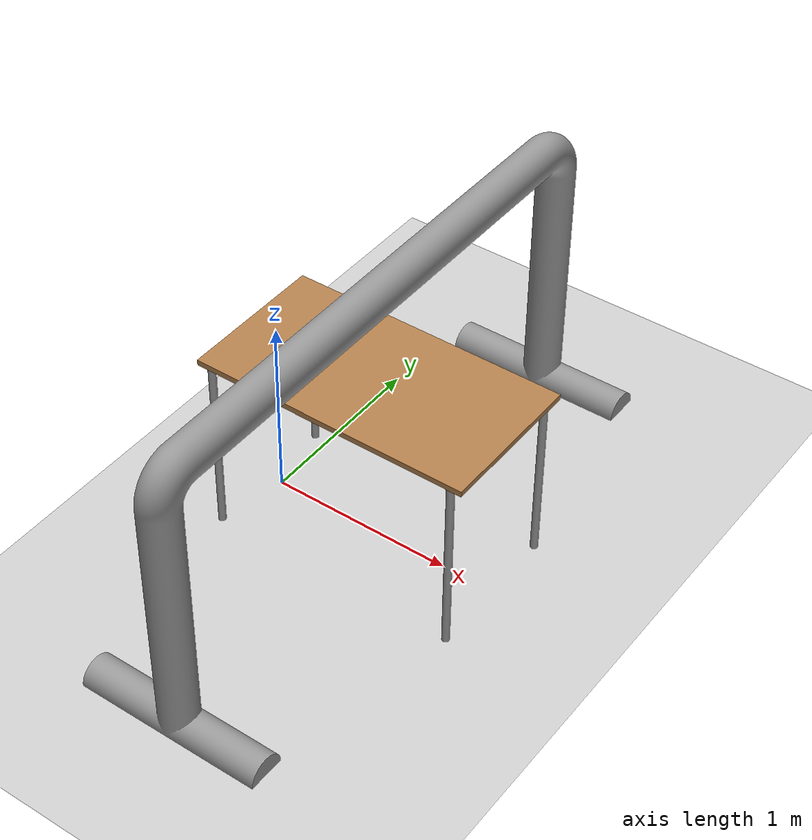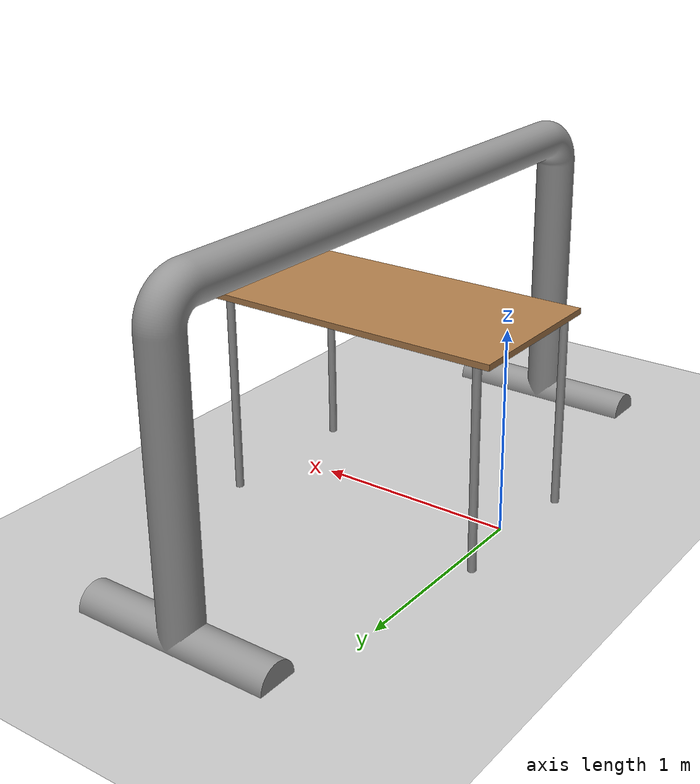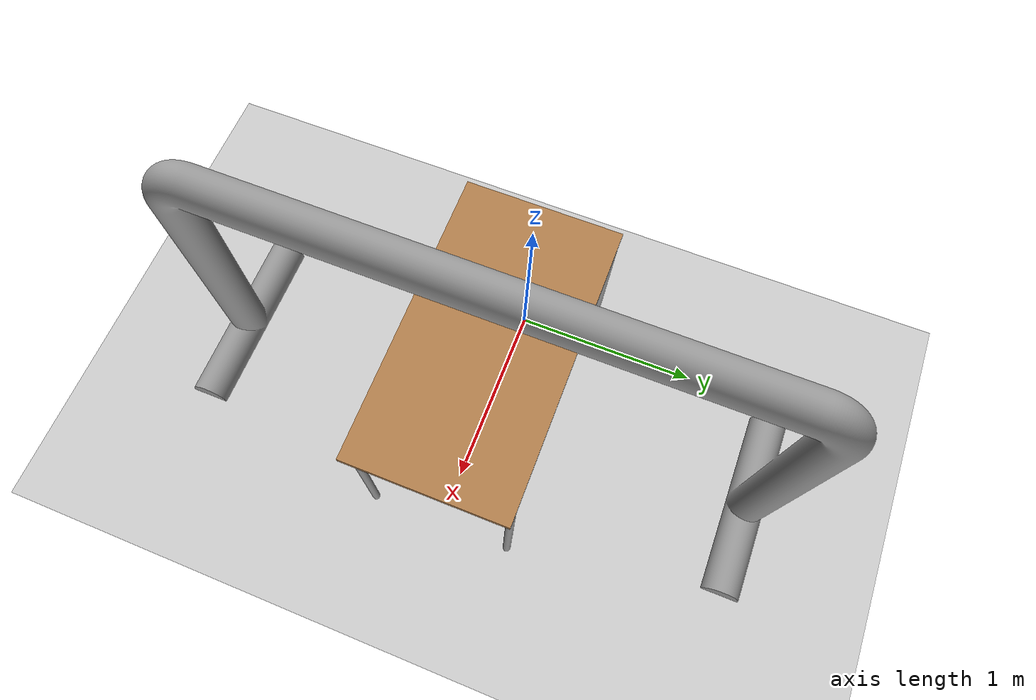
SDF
<?xml version="1.0" ?>
<sdf version="1.4">
  <world name="default">
    <include>
      <uri>model://ground_plane</uri>
    </include>
    <include>
      <uri>model://sun</uri>
    </include>
    <include>
      <uri>model://table</uri>
      <name>table</name>
      <pose>0.6 0 0 0 0 0</pose>
    </include>
    <include>
      <uri>model:///home/sjo/xarm_pipe/world/D200pipe</uri>
      <name>D200pipe</name>
      <pose>0.6 0 0 0 0 1.5708</pose>
    </include>

  <physics type="ode" update_rate="100.0">
      <max_step_size>0.001</max_step_size>
      <real_time_factor>1</real_time_factor>
      <real_time_update_rate>1000</real_time_update_rate>
      <gravity>0 0 -9.81</gravity>
    </physics>

  </world>
</sdf>

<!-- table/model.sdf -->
<sdf version="1.5">
  <model name="table">
    <static>true</static>
    <link name="link">
      <collision name="surface">
        <pose>0 0 1.0 0 0 0</pose>
        <geometry>
          <box>
            <size>1.5 0.8 0.03</size>
          </box>
        </geometry>
        <surface>
          <friction>
            <ode>
              <mu>0.6</mu>
              <mu2>0.6</mu2>
            </ode>
          </friction>
        </surface>
      </collision>
      <visual name="visual1">
        <pose>0 0 1.0 0 0 0</pose>
        <geometry>
          <box>
            <size>1.5 0.8 0.03</size>
          </box>
        </geometry>
        <material>
          <script>
            <uri>model://media/materials/scripts/gazebo.material</uri>
            <name>Gazebo/Wood</name>
          </script>
        </material>
      </visual>
      <collision name="front_left_leg">
        <pose>0.68 0.38 0.5 0 0 0</pose>
        <geometry>
          <cylinder>
            <radius>0.02</radius>
            <length>1.0</length>
          </cylinder>
        </geometry>
      </collision>
      <visual name="front_left_leg">
        <pose>0.68 0.38 0.5 0 0 0</pose>
        <geometry>
          <cylinder>
            <radius>0.02</radius>
            <length>1.0</length>
          </cylinder>
        </geometry>
        <material>
          <script>
            <uri>model://media/materials/scripts/gazebo.material</uri>
            <name>Gazebo/Grey</name>
          </script>
        </material>
      </visual>
      <collision name="front_right_leg">
        <pose>0.68 -0.38 0.5 0 0 0</pose>
        <geometry>
          <cylinder>
            <radius>0.02</radius>
            <length>1.0</length>
          </cylinder>
        </geometry>
      </collision>
      <visual name="front_right_leg">
        <pose>0.68 -0.38 0.5 0 0 0</pose>
        <geometry>
          <cylinder>
            <radius>0.02</radius>
            <length>1.0</length>
          </cylinder>
        </geometry>
        <material>
          <script>
            <uri>model://media/materials/scripts/gazebo.material</uri>
            <name>Gazebo/Grey</name>
          </script>
        </material>
      </visual>
      <collision name="back_right_leg">
        <pose>-0.68 -0.38 0.5 0 0 0</pose>
        <geometry>
          <cylinder>
            <radius>0.02</radius>
            <length>1.0</length>
          </cylinder>
        </geometry>
      </collision>
      <visual name="back_right_leg">
        <pose>-0.68 -0.38 0.5 0 0 0</pose>
        <geometry>
          <cylinder>
            <radius>0.02</radius>
            <length>1.0</length>
          </cylinder>
        </geometry>
        <material>
          <script>
            <uri>model://media/materials/scripts/gazebo.material</uri>
            <name>Gazebo/Grey</name>
          </script>
        </material>
      </visual>
      <collision name="back_left_leg">
        <pose>-0.68 0.38 0.5 0 0 0</pose>
        <geometry>
          <cylinder>
            <radius>0.02</radius>
            <length>1.0</length>
          </cylinder>
        </geometry>
      </collision>
      <visual name="back_left_leg">
        <pose>-0.68 0.38 0.5 0 0 0</pose>
        <geometry>
          <cylinder>
            <radius>0.02</radius>
            <length>1.0</length>
          </cylinder>
        </geometry>
        <material>
          <script>
            <uri>model://media/materials/scripts/gazebo.material</uri>
            <name>Gazebo/Grey</name>
          </script>
        </material>
      </visual>
    </link>
  </model>
</sdf>

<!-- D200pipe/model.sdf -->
<sdf version='1.7'>
  <model name='D200pipe'>
    <link name='link_0'>
      <inertial>
        <mass>1</mass>
        <inertia>
          <ixx>0.166667</ixx>
          <ixy>0</ixy>
          <ixz>0</ixz>
          <iyy>0.166667</iyy>
          <iyz>0</iyz>
          <izz>0.166667</izz>
        </inertia>
        <pose>0 0 0 0 -0 0</pose>
      </inertial>
      <pose>-0 0 0 0 -0 0</pose>
      <gravity>1</gravity>
      <self_collide>0</self_collide>
      <kinematic>0</kinematic>
      <enable_wind>0</enable_wind>
      <visual name='visual'>
        <pose>0 0 0 0 -0 0</pose>
        <geometry>
          <mesh>
            <uri>/home/sjo/xarm_pipe/pipe_model/D200pipe.dae</uri>
            <scale>1 1 1</scale>
          </mesh>
        </geometry>
        <material>
          <lighting>1</lighting>
          <script>
            <uri>file://media/materials/scripts/gazebo.material</uri>
            <name>Gazebo/Grey</name>
          </script>
          <shader type='pixel'/>
        </material>
        <transparency>0</transparency>
        <cast_shadows>1</cast_shadows>
      </visual>
      <collision name='collision'>
        <laser_retro>0</laser_retro>
        <max_contacts>10</max_contacts>
        <pose>0 0 0 0 -0 0</pose>
        <geometry>
          <mesh>
            <uri>/home/sjo/xarm_pipe/pipe_model/D200pipe.dae</uri>
            <scale>1 1 1</scale>
          </mesh>
        </geometry>
        <surface>
          <friction>
            <ode>
              <mu>1</mu>
              <mu2>1</mu2>
              <fdir1>0 0 0</fdir1>
              <slip1>0</slip1>
              <slip2>0</slip2>
            </ode>
            <torsional>
              <coefficient>1</coefficient>
              <patch_radius>0</patch_radius>
              <surface_radius>0</surface_radius>
              <use_patch_radius>1</use_patch_radius>
              <ode>
                <slip>0</slip>
              </ode>
            </torsional>
          </friction>
          <bounce>
            <restitution_coefficient>0</restitution_coefficient>
            <threshold>1e+06</threshold>
          </bounce>
          <contact>
            <collide_without_contact>0</collide_without_contact>
            <collide_without_contact_bitmask>1</collide_without_contact_bitmask>
            <collide_bitmask>1</collide_bitmask>
            <ode>
              <soft_cfm>0</soft_cfm>
              <soft_erp>0.2</soft_erp>
              <kp>1e+13</kp>
              <kd>1</kd>
              <max_vel>0.01</max_vel>
              <min_depth>0</min_depth>
            </ode>
            <bullet>
              <split_impulse>1</split_impulse>
              <split_impulse_penetration_threshold>-0.01</split_impulse_penetration_threshold>
              <soft_cfm>0</soft_cfm>
              <soft_erp>0.2</soft_erp>
              <kp>1e+13</kp>
              <kd>1</kd>
            </bullet>
          </contact>
        </surface>
      </collision>
    </link>
    <static>0</static>
    <allow_auto_disable>1</allow_auto_disable>
  </model>
</sdf>
